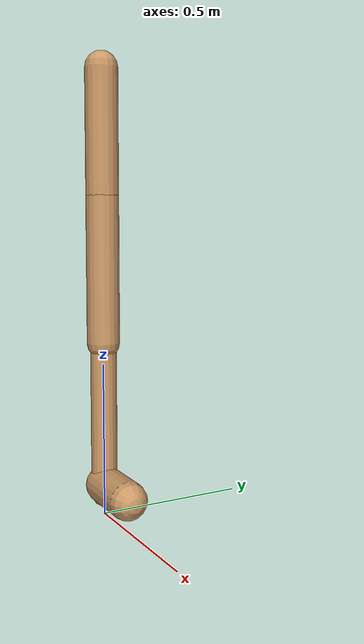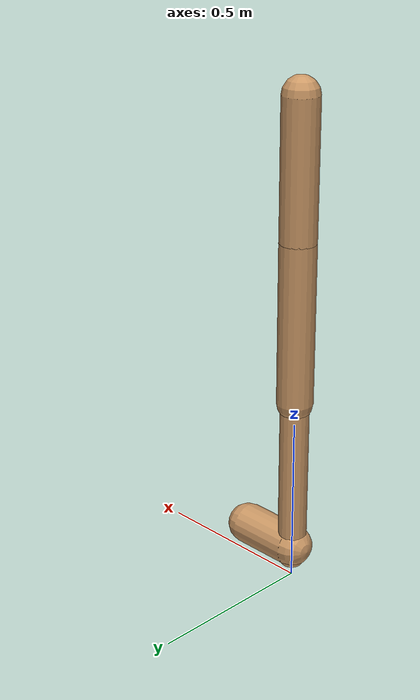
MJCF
<mujoco model="walker2d">
  <compiler angle="degree" coordinate="global" inertiafromgeom="true" />
  <default>
    <joint armature="0.01" damping=".1" limited="true" />
    <geom conaffinity="0" condim="3" contype="1" density="1000" friction="0.8 .1 .1" rgba="0.8 0.6 .4 1" />
  </default>
  <option integrator="RK4" timestep="0.002" />
  <worldbody>

    <body name="torso" pos="0 0 0.057333211175834974">
      <joint armature="0" axis="1 0 0" damping="0" limited="false" name="ignorex" pos="0 0 0" stiffness="0" type="slide" />
      <joint armature="0" axis="0 0 1" damping="0" limited="false" name="ignorez" pos="0 0 0" ref="1.25" stiffness="0" type="slide" />
      <joint armature="0" axis="0 1 0" damping="0" limited="false" name="ignorey" pos="0 0 0" stiffness="0" type="hinge" />
      <geom fromto="0 0 1.45 0 0 1.05" name="torso_geom" size="0.05308351542113457" type="capsule" />
      <body name="thigh">
        <joint axis="0 -1 0" name="thigh_joint" pos="0 0 1.05" range="-150 0" type="hinge" />
        <geom fromto="0.0 0.0 1.05 0.0 0.0 0.572842163127236" name="thigh_geom" size="0.05319994133835302" type="capsule" />
        <body name="leg" pos="0.0 0.0 -0.027157836872763963">
          <joint axis="0 -1 0" name="leg_joint" pos="0 0 0.6" range="-150 0" type="hinge" />
          <geom fromto="0.0 0.0 0.6 0.0 0.0 0.06982462569692897" name="leg_geom" size="0.042559953070682416" type="capsule" />
          <body name="foot" pos="0.0 0.0 -0.03017537430307103">
            <joint axis="0 -1 0" name="foot_joint" pos="0 0 0.1" range="-45 45" type="hinge" />
            <geom fromto="0.0 0.0 0.1 0.1815317187722391 0.0 0.1" name="foot_geom" size="0.06140157609129829" type="capsule" />
          </body>
        </body>
      </body>

      <body name="thigh_left">
        <joint axis="0 -1 0" name="thigh_left_joint" pos="0 0 1.05" range="-150 0" type="hinge" />
        <geom fromto="0.0 0.0 1.05 0.0 0.0 0.572842163127236" name="thigh_left_geom" rgba=".7 .3 .6 1" size="0.05319994133835302" type="capsule" />
        <body name="leg_left" pos="0.0 0.0 -0.027157836872763963">
          <joint axis="0 -1 0" name="leg_left_joint" pos="0 0 0.6" range="-150 0" type="hinge" />
          <geom fromto="0.0 0.0 0.6 0.0 0.0 0.06982462569692897" name="leg_left_geom" rgba=".7 .3 .6 1" size="0.042559953070682416" type="capsule" />
          <body name="foot_left" pos="0.0 0.0 -0.03017537430307103">
            <joint axis="0 -1 0" name="foot_left_joint" pos="0 0 0.1" range="-45 45" type="hinge" />
            <geom fromto="0.0 0.0 0.1 0.1815317187722391 0.0 0.1" name="foot_left_geom" rgba=".7 .3 .6 1" size="0.06140157609129829" type="capsule" />
          </body>
        </body>
      </body>
    </body>
  </worldbody>
  <actuator>

    <motor ctrllimited="true" ctrlrange="-1.0 1.0" gear="100" joint="thigh_joint" />
    <motor ctrllimited="true" ctrlrange="-1.0 1.0" gear="100" joint="leg_joint" />
    <motor ctrllimited="true" ctrlrange="-1.0 1.0" gear="100" joint="foot_joint" />
    <motor ctrllimited="true" ctrlrange="-1.0 1.0" gear="100" joint="thigh_left_joint" />
    <motor ctrllimited="true" ctrlrange="-1.0 1.0" gear="100" joint="leg_left_joint" />
    <motor ctrllimited="true" ctrlrange="-1.0 1.0" gear="100" joint="foot_left_joint" />

  </actuator>
</mujoco>
